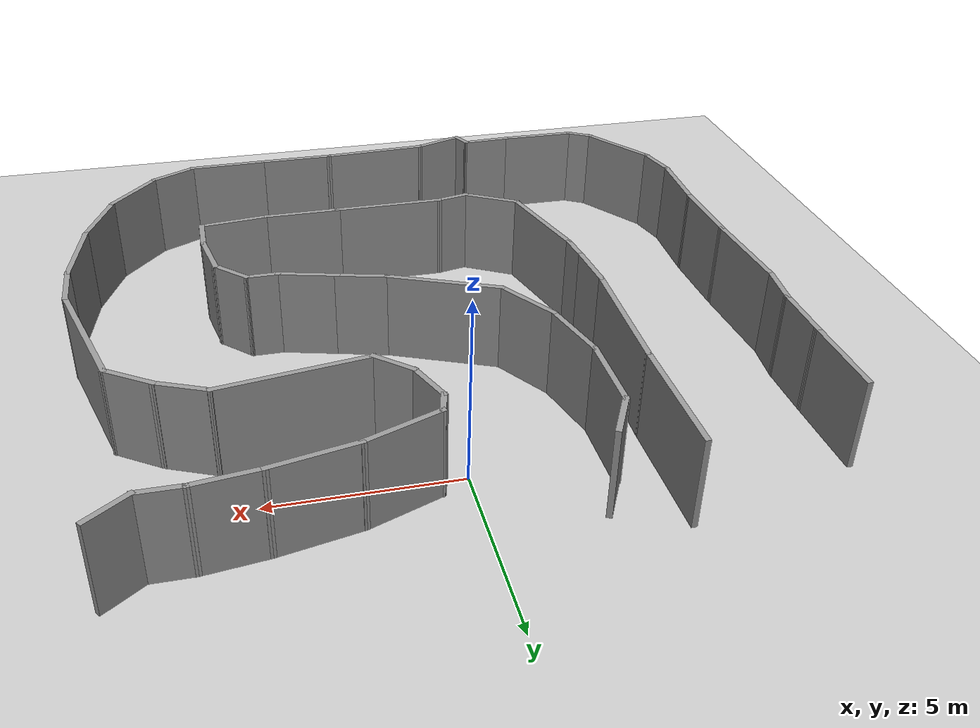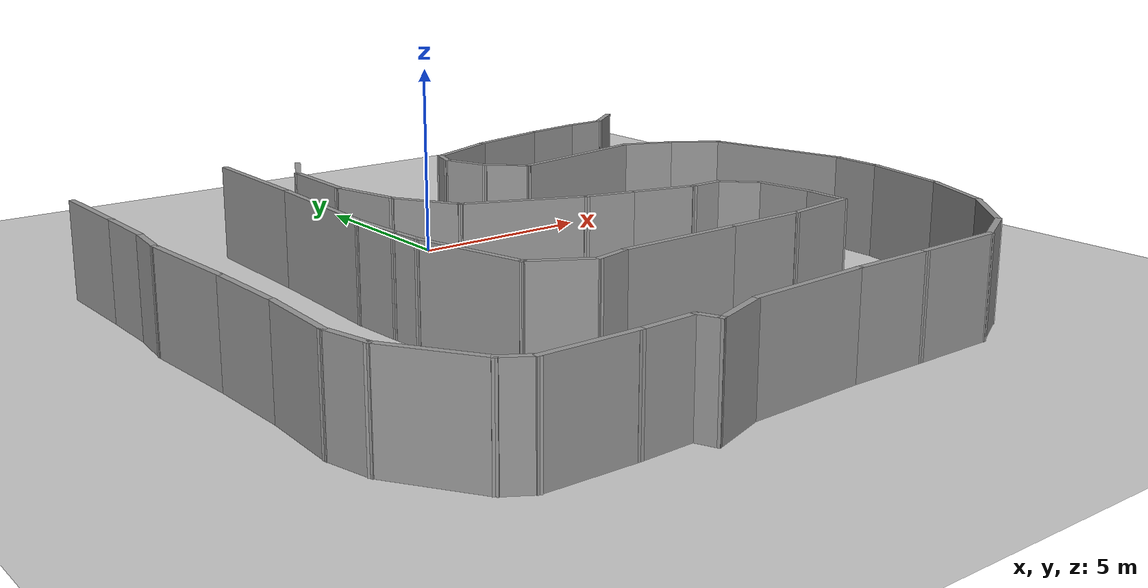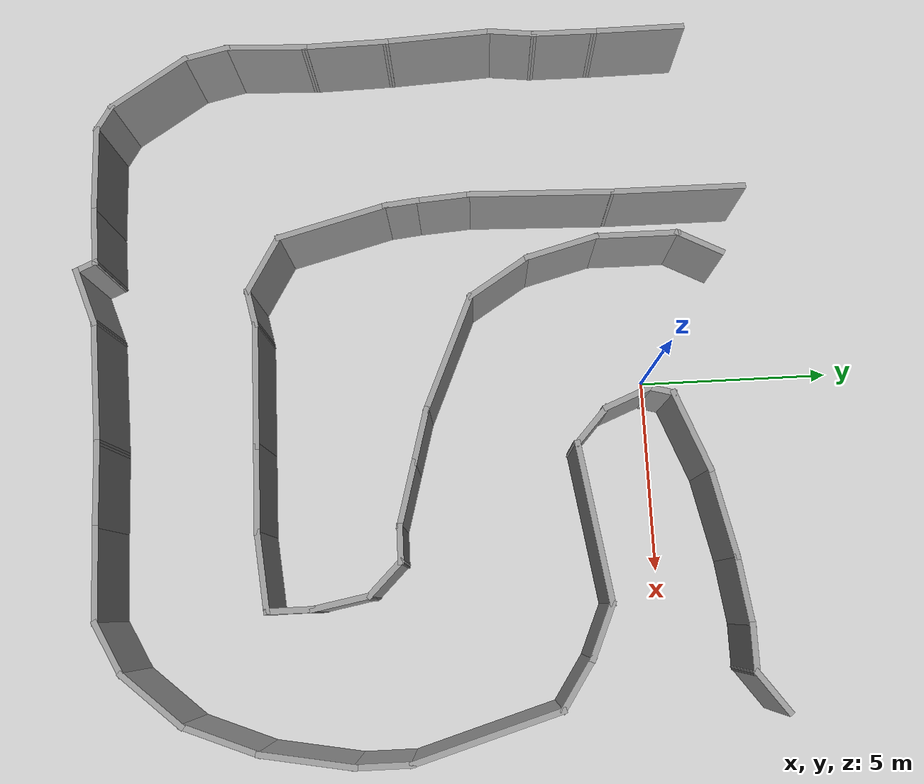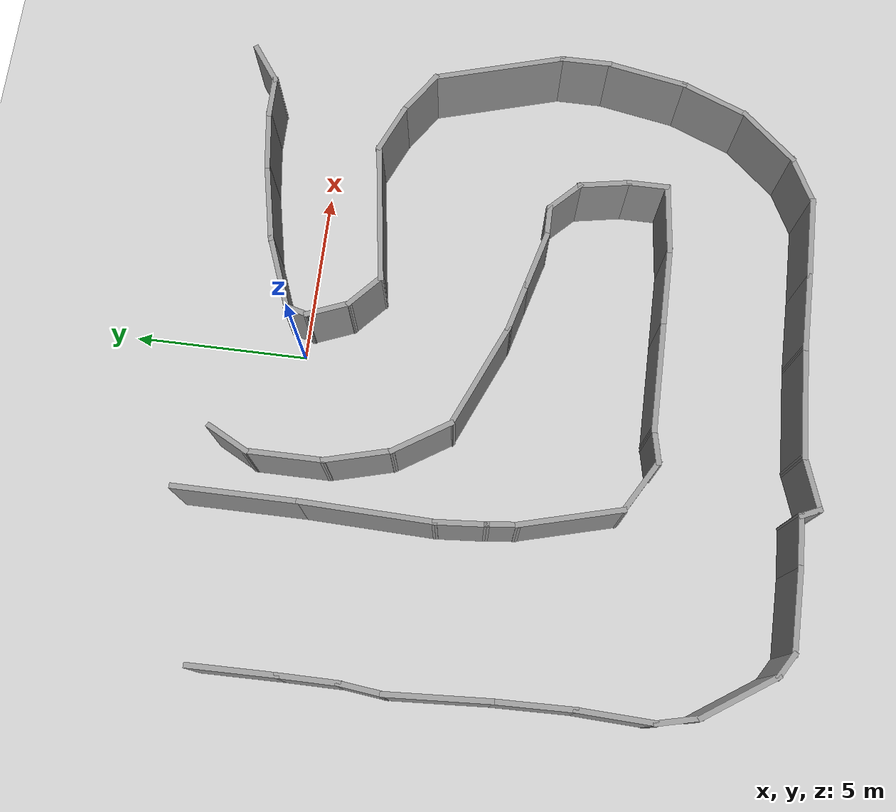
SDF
<sdf version="1.4">
 <world name="default">
  <model name="ground_plane">
   <static>1</static>
   <link name="link">
    <collision name="collision">
     <geometry><plane><normal>0 0 1</normal><size>100 100</size></plane></geometry>
     <surface><friction><ode><mu>100</mu><mu2>50</mu2></ode></friction></surface>
    </collision>
    <visual name="visual">
     <cast_shadows>0</cast_shadows>
     <geometry><plane><normal>0 0 1</normal><size>100 100</size></plane></geometry>
     <material>
      <script><uri>file://media/materials/scripts/gazebo.material</uri><name>Gazebo/Grey</name></script>
     </material>
    </visual>
    <velocity_decay><linear>0</linear><angular>0</angular></velocity_decay>
   </link>
  </model>
  <model name="BuildingDefaultName">
   <link name="Wall_0">
    <collision name="Wall_0_Collision">
     <geometry><box><size>1.75 0.15 2.5</size></box></geometry>
     <pose>0 0 1.25 0 -0 0</pose>
    </collision>
    <visual name="Wall_0_Visual">
     <pose>0 0 1.25 0 -0 0</pose>
     <geometry><box><size>1.75 0.15 2.5</size></box></geometry>
     <material>
      <script><uri>file://media/materials/scripts/gazebo.material</uri><name>Gazebo/Grey</name></script>
     </material>
    </visual>
    <velocity_decay><linear>0</linear><angular>0</angular></velocity_decay>
    <pose>-9.13259 -1.69954 0 0 0 -1.5708</pose>
   </link>
   <link name="Wall_1">
    <collision name="Wall_1_Collision">
     <geometry><box><size>1.32231 0.15 2.5</size></box></geometry>
     <pose>0 0 1.25 0 -0 0</pose>
    </collision>
    <visual name="Wall_1_Visual">
     <pose>0 0 1.25 0 -0 0</pose>
     <geometry><box><size>1.32231 0.15 2.5</size></box></geometry>
     <material>
      <script><uri>file://media/materials/scripts/gazebo.material</uri><name>Gazebo/Grey</name></script>
     </material>
    </visual>
    <velocity_decay><linear>0</linear><angular>0</angular></velocity_decay>
    <pose>-9.19833 -3.082 0 0 0 -1.68319</pose>
   </link>
   <link name="Wall_2">
    <collision name="Wall_2_Collision">
     <geometry><box><size>0.673963 0.15 2.5</size></box></geometry>
     <pose>0 0 1.25 0 -0 0</pose>
    </collision>
    <visual name="Wall_2_Visual">
     <pose>0 0 1.25 0 -0 0</pose>
     <geometry><box><size>0.673963 0.15 2.5</size></box></geometry>
     <material>
      <script><uri>file://media/materials/scripts/gazebo.material</uri><name>Gazebo/Grey</name></script>
     </material>
    </visual>
    <velocity_decay><linear>0</linear><angular>0</angular></velocity_decay>
    <pose>-3.24793 -14.2675 0 0 0 -1.15257</pose>
   </link>
   <link name="Wall_3">
    <collision name="Wall_3_Collision">
     <geometry><box><size>2.06108 0.15 2.5</size></box></geometry>
     <pose>0 0 1.25 0 -0 0</pose>
    </collision>
    <visual name="Wall_3_Visual">
     <pose>0 0 1.25 0 -0 0</pose>
     <geometry><box><size>2.06108 0.15 2.5</size></box></geometry>
     <material>
      <script><uri>file://media/materials/scripts/gazebo.material</uri><name>Gazebo/Grey</name></script>
     </material>
    </visual>
    <velocity_decay><linear>0</linear><angular>0</angular></velocity_decay>
    <pose>4.6394 -9.86659 0 0 0 -3.0322</pose>
   </link>
   <link name="Wall_4">
    <collision name="Wall_4_Collision">
     <geometry><box><size>2.25 0.15 2.5</size></box></geometry>
     <pose>0 0 1.25 0 -0 0</pose>
    </collision>
    <visual name="Wall_4_Visual">
     <pose>0 0 1.25 0 -0 0</pose>
     <geometry><box><size>2.25 0.15 2.5</size></box></geometry>
     <material>
      <script><uri>file://media/materials/scripts/gazebo.material</uri><name>Gazebo/Grey</name></script>
     </material>
    </visual>
    <velocity_decay><linear>0</linear><angular>0</angular></velocity_decay>
    <pose>2.63957 -9.97091 0 0 -0 3.14159</pose>
   </link>
   <link name="Wall_5">
    <collision name="Wall_5_Collision">
     <geometry><box><size>3.25 0.15 2.5</size></box></geometry>
     <pose>0 0 1.25 0 -0 0</pose>
    </collision>
    <visual name="Wall_5_Visual">
     <pose>0 0 1.25 0 -0 0</pose>
     <geometry><box><size>3.25 0.15 2.5</size></box></geometry>
     <material>
      <script><uri>file://media/materials/scripts/gazebo.material</uri><name>Gazebo/Grey</name></script>
     </material>
    </visual>
    <velocity_decay><linear>0</linear><angular>0</angular></velocity_decay>
    <pose>0.039574 -9.97091 0 0 -0 3.14159</pose>
   </link>
   <link name="Wall_6">
    <collision name="Wall_6_Collision">
     <geometry><box><size>1.04919 0.15 2.5</size></box></geometry>
     <pose>0 0 1.25 0 -0 0</pose>
    </collision>
    <visual name="Wall_6_Visual">
     <pose>0 0 1.25 0 -0 0</pose>
     <geometry><box><size>1.04919 0.15 2.5</size></box></geometry>
     <material>
      <script><uri>file://media/materials/scripts/gazebo.material</uri><name>Gazebo/Grey</name></script>
     </material>
    </visual>
    <velocity_decay><linear>0</linear><angular>0</angular></velocity_decay>
    <pose>-1.94987 -10.0659 0 0 0 -2.92873</pose>
   </link>
   <link name="Wall_7">
    <collision name="Wall_7_Collision">
     <geometry><box><size>1.75 0.15 2.5</size></box></geometry>
     <pose>0 0 1.25 0 -0 0</pose>
    </collision>
    <visual name="Wall_7_Visual">
     <pose>0 0 1.25 0 -0 0</pose>
     <geometry><box><size>1.75 0.15 2.5</size></box></geometry>
     <material>
      <script><uri>file://media/materials/scripts/gazebo.material</uri><name>Gazebo/Grey</name></script>
     </material>
    </visual>
    <velocity_decay><linear>0</linear><angular>0</angular></velocity_decay>
    <pose>-3.08214 -9.76088 0 0 -0 2.61799</pose>
   </link>
   <link name="Wall_8">
    <collision name="Wall_8_Collision">
     <geometry><box><size>3 0.15 2.5</size></box></geometry>
     <pose>0 0 1.25 0 -0 0</pose>
    </collision>
    <visual name="Wall_8_Visual">
     <pose>0 0 1.25 0 -0 0</pose>
     <geometry><box><size>3 0.15 2.5</size></box></geometry>
     <material>
      <script><uri>file://media/materials/scripts/gazebo.material</uri><name>Gazebo/Grey</name></script>
     </material>
    </visual>
    <velocity_decay><linear>0</linear><angular>0</angular></velocity_decay>
    <pose>-4.14377 -7.98443 0 0 -0 1.8326</pose>
   </link>
   <link name="Wall_9">
    <collision name="Wall_9_Collision">
     <geometry><box><size>0.971593 0.15 2.5</size></box></geometry>
     <pose>0 0 1.25 0 -0 0</pose>
    </collision>
    <visual name="Wall_9_Visual">
     <pose>0 0 1.25 0 -0 0</pose>
     <geometry><box><size>0.971593 0.15 2.5</size></box></geometry>
     <material>
      <script><uri>file://media/materials/scripts/gazebo.material</uri><name>Gazebo/Grey</name></script>
     </material>
    </visual>
    <velocity_decay><linear>0</linear><angular>0</angular></velocity_decay>
    <pose>-4.55908 -6.19983 0 0 -0 1.68422</pose>
   </link>
   <link name="Wall_10">
    <collision name="Wall_10_Collision">
     <geometry><box><size>1.52602 0.15 2.5</size></box></geometry>
     <pose>0 0 1.25 0 -0 0</pose>
    </collision>
    <visual name="Wall_10_Visual">
     <pose>0 0 1.25 0 -0 0</pose>
     <geometry><box><size>1.52602 0.15 2.5</size></box></geometry>
     <material>
      <script><uri>file://media/materials/scripts/gazebo.material</uri><name>Gazebo/Grey</name></script>
     </material>
    </visual>
    <velocity_decay><linear>0</linear><angular>0</angular></velocity_decay>
    <pose>-4.65835 -5.10569 0 0 -0 1.64757</pose>
   </link>
   <link name="Wall_11">
    <collision name="Wall_11_Collision">
     <geometry><box><size>3.80308 0.15 2.5</size></box></geometry>
     <pose>0 0 1.25 0 -0 0</pose>
    </collision>
    <visual name="Wall_11_Visual">
     <pose>0 0 1.25 0 -0 0</pose>
     <geometry><box><size>3.80308 0.15 2.5</size></box></geometry>
     <material>
      <script><uri>file://media/materials/scripts/gazebo.material</uri><name>Gazebo/Grey</name></script>
     </material>
    </visual>
    <velocity_decay><linear>0</linear><angular>0</angular></velocity_decay>
    <pose>-4.65835 -2.59393 0 0 -0 1.5419</pose>
   </link>
   <link name="Wall_12">
    <collision name="Wall_12_Collision">
     <geometry><box><size>1.61374 0.15 2.5</size></box></geometry>
     <pose>0 0 1.25 0 -0 0</pose>
    </collision>
    <visual name="Wall_12_Visual">
     <pose>0 0 1.25 0 -0 0</pose>
     <geometry><box><size>1.61374 0.15 2.5</size></box></geometry>
     <material>
      <script><uri>file://media/materials/scripts/gazebo.material</uri><name>Gazebo/Grey</name></script>
     </material>
    </visual>
    <velocity_decay><linear>0</linear><angular>0</angular></velocity_decay>
    <pose>-2.44992 -14.2675 0 0 -0 0.333244</pose>
   </link>
   <link name="Wall_13">
    <collision name="Wall_13_Collision">
     <geometry><box><size>3.21191 0.15 2.5</size></box></geometry>
     <pose>0 0 1.25 0 -0 0</pose>
    </collision>
    <visual name="Wall_13_Visual">
     <pose>0 0 1.25 0 -0 0</pose>
     <geometry><box><size>3.21191 0.15 2.5</size></box></geometry>
     <material>
      <script><uri>file://media/materials/scripts/gazebo.material</uri><name>Gazebo/Grey</name></script>
     </material>
    </visual>
    <velocity_decay><linear>0</linear><angular>0</angular></velocity_decay>
    <pose>-0.228806 -13.9616 0 0 -0 0.043451</pose>
   </link>
   <link name="Wall_14">
    <collision name="Wall_14_Collision">
     <geometry><box><size>2.25158 0.15 2.5</size></box></geometry>
     <pose>0 0 1.25 0 -0 0</pose>
    </collision>
    <visual name="Wall_14_Visual">
     <pose>0 0 1.25 0 -0 0</pose>
     <geometry><box><size>2.25158 0.15 2.5</size></box></geometry>
     <material>
      <script><uri>file://media/materials/scripts/gazebo.material</uri><name>Gazebo/Grey</name></script>
     </material>
    </visual>
    <velocity_decay><linear>0</linear><angular>0</angular></velocity_decay>
    <pose>2.35141 -13.8951 0 0 -0 0</pose>
   </link>
   <link name="Wall_15">
    <collision name="Wall_15_Collision">
     <geometry><box><size>2.41117 0.15 2.5</size></box></geometry>
     <pose>0 0 1.25 0 -0 0</pose>
    </collision>
    <visual name="Wall_15_Visual">
     <pose>0 0 1.25 0 -0 0</pose>
     <geometry><box><size>2.41117 0.15 2.5</size></box></geometry>
     <material>
      <script><uri>file://media/materials/scripts/gazebo.material</uri><name>Gazebo/Grey</name></script>
     </material>
    </visual>
    <velocity_decay><linear>0</linear><angular>0</angular></velocity_decay>
    <pose>4.53263 -13.8818 0 0 -0 0.011764</pose>
   </link>
   <link name="Wall_16">
    <collision name="Wall_16_Collision">
     <geometry><box><size>1.53014 0.15 2.5</size></box></geometry>
     <pose>0 0 1.25 0 -0 0</pose>
    </collision>
    <visual name="Wall_16_Visual">
     <pose>0 0 1.25 0 -0 0</pose>
     <geometry><box><size>1.53014 0.15 2.5</size></box></geometry>
     <material>
      <script><uri>file://media/materials/scripts/gazebo.material</uri><name>Gazebo/Grey</name></script>
     </material>
    </visual>
    <velocity_decay><linear>0</linear><angular>0</angular></velocity_decay>
    <pose>6.27494 -13.5493 0 0 -0 0.480887</pose>
   </link>
   <link name="Wall_17">
    <collision name="Wall_17_Collision">
     <geometry><box><size>2.05428 0.15 2.5</size></box></geometry>
     <pose>0 0 1.25 0 -0 0</pose>
    </collision>
    <visual name="Wall_17_Visual">
     <pose>0 0 1.25 0 -0 0</pose>
     <geometry><box><size>2.05428 0.15 2.5</size></box></geometry>
     <material>
      <script><uri>file://media/materials/scripts/gazebo.material</uri><name>Gazebo/Grey</name></script>
     </material>
    </visual>
    <velocity_decay><linear>0</linear><angular>0</angular></velocity_decay>
    <pose>7.51185 -12.5119 0 0 -0 0.854594</pose>
   </link>
   <link name="Wall_18">
    <collision name="Wall_18_Collision">
     <geometry><box><size>2.09618 0.15 2.5</size></box></geometry>
     <pose>0 0 1.25 0 -0 0</pose>
    </collision>
    <visual name="Wall_18_Visual">
     <pose>0 0 1.25 0 -0 0</pose>
     <geometry><box><size>2.09618 0.15 2.5</size></box></geometry>
     <material>
      <script><uri>file://media/materials/scripts/gazebo.material</uri><name>Gazebo/Grey</name></script>
     </material>
    </visual>
    <velocity_decay><linear>0</linear><angular>0</angular></velocity_decay>
    <pose>8.49606 -10.8893 0 0 -0 1.19283</pose>
   </link>
   <link name="Wall_19">
    <collision name="Wall_19_Collision">
     <geometry><box><size>2.41976 0.15 2.5</size></box></geometry>
     <pose>0 0 1.25 0 -0 0</pose>
    </collision>
    <visual name="Wall_19_Visual">
     <pose>0 0 1.25 0 -0 0</pose>
     <geometry><box><size>2.41976 0.15 2.5</size></box></geometry>
     <material>
      <script><uri>file://media/materials/scripts/gazebo.material</uri><name>Gazebo/Grey</name></script>
     </material>
    </visual>
    <velocity_decay><linear>0</linear><angular>0</angular></velocity_decay>
    <pose>9.05466 -8.86771 0 0 -0 1.39409</pose>
   </link>
   <link name="Wall_20">
    <collision name="Wall_20_Collision">
     <geometry><box><size>1.5 0.15 2.5</size></box></geometry>
     <pose>0 0 1.25 0 -0 0</pose>
    </collision>
    <visual name="Wall_20_Visual">
     <pose>0 0 1.25 0 -0 0</pose>
     <geometry><box><size>1.5 0.15 2.5</size></box></geometry>
     <material>
      <script><uri>file://media/materials/scripts/gazebo.material</uri><name>Gazebo/Grey</name></script>
     </material>
    </visual>
    <velocity_decay><linear>0</linear><angular>0</angular></velocity_decay>
    <pose>9.25417 -7.0755 0 0 -0 1.5708</pose>
   </link>
   <link name="Wall_21">
    <collision name="Wall_21_Collision">
     <geometry><box><size>2.93747 0.15 2.5</size></box></geometry>
     <pose>0 0 1.25 0 -0 0</pose>
    </collision>
    <visual name="Wall_21_Visual">
     <pose>0 0 1.25 0 -0 0</pose>
     <geometry><box><size>2.93747 0.15 2.5</size></box></geometry>
     <material>
      <script><uri>file://media/materials/scripts/gazebo.material</uri><name>Gazebo/Grey</name></script>
     </material>
    </visual>
    <velocity_decay><linear>0</linear><angular>0</angular></velocity_decay>
    <pose>-9.18202 -5.05577 0 0 0 -1.51189</pose>
   </link>
   <link name="Wall_22">
    <collision name="Wall_22_Collision">
     <geometry><box><size>3.89422 0.15 2.5</size></box></geometry>
     <pose>0 0 1.25 0 -0 0</pose>
    </collision>
    <visual name="Wall_22_Visual">
     <pose>0 0 1.25 0 -0 0</pose>
     <geometry><box><size>3.89422 0.15 2.5</size></box></geometry>
     <material>
      <script><uri>file://media/materials/scripts/gazebo.material</uri><name>Gazebo/Grey</name></script>
     </material>
    </visual>
    <velocity_decay><linear>0</linear><angular>0</angular></velocity_decay>
    <pose>8.73546 -4.60168 0 0 -0 1.85154</pose>
   </link>
   <link name="Wall_23">
    <collision name="Wall_23_Collision">
     <geometry><box><size>1.52963 0.15 2.5</size></box></geometry>
     <pose>0 0 1.25 0 -0 0</pose>
    </collision>
    <visual name="Wall_23_Visual">
     <pose>0 0 1.25 0 -0 0</pose>
     <geometry><box><size>1.52963 0.15 2.5</size></box></geometry>
     <material>
      <script><uri>file://media/materials/scripts/gazebo.material</uri><name>Gazebo/Grey</name></script>
     </material>
    </visual>
    <velocity_decay><linear>0</linear><angular>0</angular></velocity_decay>
    <pose>7.64485 -2.41716 0 0 -0 2.54824</pose>
   </link>
   <link name="Wall_24">
    <collision name="Wall_24_Collision">
     <geometry><box><size>1.54366 0.15 2.5</size></box></geometry>
     <pose>0 0 1.25 0 -0 0</pose>
    </collision>
    <visual name="Wall_24_Visual">
     <pose>0 0 1.25 0 -0 0</pose>
     <geometry><box><size>1.54366 0.15 2.5</size></box></geometry>
     <material>
      <script><uri>file://media/materials/scripts/gazebo.material</uri><name>Gazebo/Grey</name></script>
     </material>
    </visual>
    <velocity_decay><linear>0</linear><angular>0</angular></velocity_decay>
    <pose>6.43454 -1.75215 0 0 -0 2.72918</pose>
   </link>
   <link name="Wall_25">
    <collision name="Wall_25_Collision">
     <geometry><box><size>4.10378 0.15 2.5</size></box></geometry>
     <pose>0 0 1.25 0 -0 0</pose>
    </collision>
    <visual name="Wall_25_Visual">
     <pose>0 0 1.25 0 -0 0</pose>
     <geometry><box><size>4.10378 0.15 2.5</size></box></geometry>
     <material>
      <script><uri>file://media/materials/scripts/gazebo.material</uri><name>Gazebo/Grey</name></script>
     </material>
    </visual>
    <velocity_decay><linear>0</linear><angular>0</angular></velocity_decay>
    <pose>3.84102 -1.76545 0 0 0 -2.99303</pose>
   </link>
   <link name="Wall_26">
    <collision name="Wall_26_Collision">
     <geometry><box><size>1.29875 0.15 2.5</size></box></geometry>
     <pose>0 0 1.25 0 -0 0</pose>
    </collision>
    <visual name="Wall_26_Visual">
     <pose>0 0 1.25 0 -0 0</pose>
     <geometry><box><size>1.29875 0.15 2.5</size></box></geometry>
     <material>
      <script><uri>file://media/materials/scripts/gazebo.material</uri><name>Gazebo/Grey</name></script>
     </material>
    </visual>
    <velocity_decay><linear>0</linear><angular>0</angular></velocity_decay>
    <pose>1.46031 -1.67235 0 0 -0 2.40534</pose>
   </link>
   <link name="Wall_27">
    <collision name="Wall_27_Collision">
     <geometry><box><size>1.35526 0.15 2.5</size></box></geometry>
     <pose>0 0 1.25 0 -0 0</pose>
    </collision>
    <visual name="Wall_27_Visual">
     <pose>0 0 1.25 0 -0 0</pose>
     <geometry><box><size>1.35526 0.15 2.5</size></box></geometry>
     <material>
      <script><uri>file://media/materials/scripts/gazebo.material</uri><name>Gazebo/Grey</name></script>
     </material>
    </visual>
    <velocity_decay><linear>0</linear><angular>0</angular></velocity_decay>
    <pose>0.808602 -0.728047 0 0 -0 1.9554</pose>
   </link>
   <link name="Wall_28">
    <collision name="Wall_28_Collision">
     <geometry><box><size>0.75 0.15 2.5</size></box></geometry>
     <pose>0 0 1.25 0 -0 0</pose>
    </collision>
    <visual name="Wall_28_Visual">
     <pose>0 0 1.25 0 -0 0</pose>
     <geometry><box><size>0.75 0.15 2.5</size></box></geometry>
     <material>
      <script><uri>file://media/materials/scripts/gazebo.material</uri><name>Gazebo/Grey</name></script>
     </material>
    </visual>
    <velocity_decay><linear>0</linear><angular>0</angular></velocity_decay>
    <pose>0.660146 0.120334 0 0 -0 1.309</pose>
   </link>
   <link name="Wall_29">
    <collision name="Wall_29_Collision">
     <geometry><box><size>2.23581 0.15 2.5</size></box></geometry>
     <pose>0 0 1.25 0 -0 0</pose>
    </collision>
    <visual name="Wall_29_Visual">
     <pose>0 0 1.25 0 -0 0</pose>
     <geometry><box><size>2.23581 0.15 2.5</size></box></geometry>
     <material>
      <script><uri>file://media/materials/scripts/gazebo.material</uri><name>Gazebo/Grey</name></script>
     </material>
    </visual>
    <velocity_decay><linear>0</linear><angular>0</angular></velocity_decay>
    <pose>1.71085 0.785339 0 0 -0 0.368044</pose>
   </link>
   <link name="Wall_30">
    <collision name="Wall_30_Collision">
     <geometry><box><size>2.35156 0.15 2.5</size></box></geometry>
     <pose>0 0 1.25 0 -0 0</pose>
    </collision>
    <visual name="Wall_30_Visual">
     <pose>0 0 1.25 0 -0 0</pose>
     <geometry><box><size>2.35156 0.15 2.5</size></box></geometry>
     <material>
      <script><uri>file://media/materials/scripts/gazebo.material</uri><name>Gazebo/Grey</name></script>
     </material>
    </visual>
    <velocity_decay><linear>0</linear><angular>0</angular></velocity_decay>
    <pose>3.76122 1.38667 0 0 -0 0.206874</pose>
   </link>
   <link name="Wall_31">
    <collision name="Wall_31_Collision">
     <geometry><box><size>1.78651 0.15 2.5</size></box></geometry>
     <pose>0 0 1.25 0 -0 0</pose>
    </collision>
    <visual name="Wall_31_Visual">
     <pose>0 0 1.25 0 -0 0</pose>
     <geometry><box><size>1.78651 0.15 2.5</size></box></geometry>
     <material>
      <script><uri>file://media/materials/scripts/gazebo.material</uri><name>Gazebo/Grey</name></script>
     </material>
    </visual>
    <velocity_decay><linear>0</linear><angular>0</angular></velocity_decay>
    <pose>5.64984 1.71917 0 0 -0 0.130403</pose>
   </link>
   <link name="Wall_32">
    <collision name="Wall_32_Collision">
     <geometry><box><size>2.30527 0.15 2.5</size></box></geometry>
     <pose>0 0 1.25 0 -0 0</pose>
    </collision>
    <visual name="Wall_32_Visual">
     <pose>0 0 1.25 0 -0 0</pose>
     <geometry><box><size>2.30527 0.15 2.5</size></box></geometry>
     <material>
      <script><uri>file://media/materials/scripts/gazebo.material</uri><name>Gazebo/Grey</name></script>
     </material>
    </visual>
    <velocity_decay><linear>0</linear><angular>0</angular></velocity_decay>
    <pose>-9.07337 -7.5244 0 0 0 -1.54611</pose>
   </link>
   <link name="Wall_33">
    <collision name="Wall_33_Collision">
     <geometry><box><size>1.25 0.15 2.5</size></box></geometry>
     <pose>0 0 1.25 0 -0 0</pose>
    </collision>
    <visual name="Wall_33_Visual">
     <pose>0 0 1.25 0 -0 0</pose>
     <geometry><box><size>1.25 0.15 2.5</size></box></geometry>
     <material>
      <script><uri>file://media/materials/scripts/gazebo.material</uri><name>Gazebo/Grey</name></script>
     </material>
    </visual>
    <velocity_decay><linear>0</linear><angular>0</angular></velocity_decay>
    <pose>7.01114 1.82557 0 0 -0 0</pose>
   </link>
   <link name="Wall_34">
    <collision name="Wall_34_Collision">
     <geometry><box><size>1.32364 0.15 2.5</size></box></geometry>
     <pose>0 0 1.25 0 -0 0</pose>
    </collision>
    <visual name="Wall_34_Visual">
     <pose>0 0 1.25 0 -0 0</pose>
     <geometry><box><size>1.32364 0.15 2.5</size></box></geometry>
     <material>
      <script><uri>file://media/materials/scripts/gazebo.material</uri><name>Gazebo/Grey</name></script>
     </material>
    </visual>
    <velocity_decay><linear>0</linear><angular>0</angular></velocity_decay>
    <pose>8.03525 2.17137 0 0 -0 0.63017</pose>
   </link>
   <link name="Wall_43">
    <collision name="Wall_43_Collision">
     <geometry><box><size>2.19977 0.15 2.5</size></box></geometry>
     <pose>0 0 1.25 0 -0 0</pose>
    </collision>
    <visual name="Wall_43_Visual">
     <pose>0 0 1.25 0 -0 0</pose>
     <geometry><box><size>2.19977 0.15 2.5</size></box></geometry>
     <material>
      <script><uri>file://media/materials/scripts/gazebo.material</uri><name>Gazebo/Grey</name></script>
     </material>
    </visual>
    <velocity_decay><linear>0</linear><angular>0</angular></velocity_decay>
    <pose>-9.08667 -9.62581 0 0 0 -1.60974</pose>
   </link>
   <link name="Wall_54">
    <collision name="Wall_54_Collision">
     <geometry><box><size>1.29844 0.15 2.5</size></box></geometry>
     <pose>0 0 1.25 0 -0 0</pose>
    </collision>
    <visual name="Wall_54_Visual">
     <pose>0 0 1.25 0 -0 0</pose>
     <geometry><box><size>1.29844 0.15 2.5</size></box></geometry>
     <material>
      <script><uri>file://media/materials/scripts/gazebo.material</uri><name>Gazebo/Grey</name></script>
     </material>
    </visual>
    <velocity_decay><linear>0</linear><angular>0</angular></velocity_decay>
    <pose>-8.99357 -11.2085 0 0 0 -1.33705</pose>
   </link>
   <link name="Wall_63">
    <collision name="Wall_63_Collision">
     <geometry><box><size>2.48611 0.15 2.5</size></box></geometry>
     <pose>0 0 1.25 0 -0 0</pose>
    </collision>
    <visual name="Wall_63_Visual">
     <pose>0 0 1.25 0 -0 0</pose>
     <geometry><box><size>2.48611 0.15 2.5</size></box></geometry>
     <material>
      <script><uri>file://media/materials/scripts/gazebo.material</uri><name>Gazebo/Grey</name></script>
     </material>
    </visual>
    <velocity_decay><linear>0</linear><angular>0</angular></velocity_decay>
    <pose>-9.14867 0.268403 0 0 0 -1.55703</pose>
   </link>
   <link name="Wall_64">
    <collision name="Wall_64_Collision">
     <geometry><box><size>2.4518 0.15 2.5</size></box></geometry>
     <pose>0 0 1.25 0 -0 0</pose>
    </collision>
    <visual name="Wall_64_Visual">
     <pose>0 0 1.25 0 -0 0</pose>
     <geometry><box><size>2.4518 0.15 2.5</size></box></geometry>
     <material>
      <script><uri>file://media/materials/scripts/gazebo.material</uri><name>Gazebo/Grey</name></script>
     </material>
    </visual>
    <velocity_decay><linear>0</linear><angular>0</angular></velocity_decay>
    <pose>-8.22217 -12.7247 0 0 0 -0.982794</pose>
   </link>
   <link name="Wall_65">
    <collision name="Wall_65_Collision">
     <geometry><box><size>3.5 0.15 2.5</size></box></geometry>
     <pose>0 0 1.25 0 -0 0</pose>
    </collision>
    <visual name="Wall_65_Visual">
     <pose>0 0 1.25 0 -0 0</pose>
     <geometry><box><size>3.5 0.15 2.5</size></box></geometry>
     <material>
      <script><uri>file://media/materials/scripts/gazebo.material</uri><name>Gazebo/Grey</name></script>
     </material>
    </visual>
    <velocity_decay><linear>0</linear><angular>0</angular></velocity_decay>
    <pose>-4.60558 0.970175 0 0 -0 1.5708</pose>
   </link>
   <link name="Wall_75">
    <collision name="Wall_75_Collision">
     <geometry><box><size>0.866232 0.15 2.5</size></box></geometry>
     <pose>0 0 1.25 0 -0 0</pose>
    </collision>
    <visual name="Wall_75_Visual">
     <pose>0 0 1.25 0 -0 0</pose>
     <geometry><box><size>0.866232 0.15 2.5</size></box></geometry>
     <material>
      <script><uri>file://media/materials/scripts/gazebo.material</uri><name>Gazebo/Grey</name></script>
     </material>
    </visual>
    <velocity_decay><linear>0</linear><angular>0</angular></velocity_decay>
    <pose>-7.27786 -13.8685 0 0 0 -0.546789</pose>
   </link>
   <link name="Wall_86">
    <collision name="Wall_86_Collision">
     <geometry><box><size>2.38457 0.15 2.5</size></box></geometry>
     <pose>0 0 1.25 0 -0 0</pose>
    </collision>
    <visual name="Wall_86_Visual">
     <pose>0 0 1.25 0 -0 0</pose>
     <geometry><box><size>2.38457 0.15 2.5</size></box></geometry>
     <material>
      <script><uri>file://media/materials/scripts/gazebo.material</uri><name>Gazebo/Grey</name></script>
     </material>
    </visual>
    <velocity_decay><linear>0</linear><angular>0</angular></velocity_decay>
    <pose>-5.85475 -14.068 0 0 0 -0.011904</pose>
   </link>
   <link name="Wall_96">
    <collision name="Wall_96_Collision">
     <geometry><box><size>1.37184 0.15 2.5</size></box></geometry>
     <pose>0 0 1.25 0 -0 0</pose>
    </collision>
    <visual name="Wall_96_Visual">
     <pose>0 0 1.25 0 -0 0</pose>
     <geometry><box><size>1.37184 0.15 2.5</size></box></geometry>
     <material>
      <script><uri>file://media/materials/scripts/gazebo.material</uri><name>Gazebo/Grey</name></script>
     </material>
    </visual>
    <velocity_decay><linear>0</linear><angular>0</angular></velocity_decay>
    <pose>-3.14009 1.39828 0 0 0 -2.05333</pose>
   </link>
   <link name="Wall_97">
    <collision name="Wall_97_Collision">
     <geometry><box><size>1.53423 0.15 2.5</size></box></geometry>
     <pose>0 0 1.25 0 -0 0</pose>
    </collision>
    <visual name="Wall_97_Visual">
     <pose>0 0 1.25 0 -0 0</pose>
     <geometry><box><size>1.53423 0.15 2.5</size></box></geometry>
     <material>
      <script><uri>file://media/materials/scripts/gazebo.material</uri><name>Gazebo/Grey</name></script>
     </material>
    </visual>
    <velocity_decay><linear>0</linear><angular>0</angular></velocity_decay>
    <pose>-4.04594 -14.0547 0 0 -0 0.038443</pose>
   </link>
   <link name="Wall_98">
    <collision name="Wall_98_Collision">
     <geometry><box><size>2.25 0.15 2.5</size></box></geometry>
     <pose>0 0 1.25 0 -0 0</pose>
    </collision>
    <visual name="Wall_98_Visual">
     <pose>0 0 1.25 0 -0 0</pose>
     <geometry><box><size>2.25 0.15 2.5</size></box></geometry>
     <material>
      <script><uri>file://media/materials/scripts/gazebo.material</uri><name>Gazebo/Grey</name></script>
     </material>
    </visual>
    <velocity_decay><linear>0</linear><angular>0</angular></velocity_decay>
    <pose>-3.42357 -0.192888 0 0 0 -1.5708</pose>
   </link>
   <link name="Wall_99">
    <collision name="Wall_99_Collision">
     <geometry><box><size>2 0.15 2.5</size></box></geometry>
     <pose>0 0 1.25 0 -0 0</pose>
    </collision>
    <visual name="Wall_99_Visual">
     <pose>0 0 1.25 0 -0 0</pose>
     <geometry><box><size>2 0.15 2.5</size></box></geometry>
     <material>
      <script><uri>file://media/materials/scripts/gazebo.material</uri><name>Gazebo/Grey</name></script>
     </material>
    </visual>
    <velocity_decay><linear>0</linear><angular>0</angular></velocity_decay>
    <pose>-3.18416 -2.13637 0 0 0 -1.309</pose>
   </link>
   <link name="Wall_100">
    <collision name="Wall_100_Collision">
     <geometry><box><size>1.92512 0.15 2.5</size></box></geometry>
     <pose>0 0 1.25 0 -0 0</pose>
    </collision>
    <visual name="Wall_100_Visual">
     <pose>0 0 1.25 0 -0 0</pose>
     <geometry><box><size>1.92512 0.15 2.5</size></box></geometry>
     <material>
      <script><uri>file://media/materials/scripts/gazebo.material</uri><name>Gazebo/Grey</name></script>
     </material>
    </visual>
    <velocity_decay><linear>0</linear><angular>0</angular></velocity_decay>
    <pose>-2.46652 -3.77754 0 0 0 -1.00175</pose>
   </link>
   <link name="Wall_101">
    <collision name="Wall_101_Collision">
     <geometry><box><size>3.25133 0.15 2.5</size></box></geometry>
     <pose>0 0 1.25 0 -0 0</pose>
    </collision>
    <visual name="Wall_101_Visual">
     <pose>0 0 1.25 0 -0 0</pose>
     <geometry><box><size>3.25133 0.15 2.5</size></box></geometry>
     <material>
      <script><uri>file://media/materials/scripts/gazebo.material</uri><name>Gazebo/Grey</name></script>
     </material>
    </visual>
    <velocity_decay><linear>0</linear><angular>0</angular></velocity_decay>
    <pose>-0.563538 -5.13735 0 0 0 -0.405785</pose>
   </link>
   <link name="Wall_102">
    <collision name="Wall_102_Collision">
     <geometry><box><size>1.5 0.15 2.5</size></box></geometry>
     <pose>0 0 1.25 0 -0 0</pose>
    </collision>
    <visual name="Wall_102_Visual">
     <pose>0 0 1.25 0 -0 0</pose>
     <geometry><box><size>1.5 0.15 2.5</size></box></geometry>
     <material>
      <script><uri>file://media/materials/scripts/gazebo.material</uri><name>Gazebo/Grey</name></script>
     </material>
    </visual>
    <velocity_decay><linear>0</linear><angular>0</angular></velocity_decay>
    <pose>1.5132 -5.92416 0 0 0 -0.261799</pose>
   </link>
   <link name="Wall_103">
    <collision name="Wall_103_Collision">
     <geometry><box><size>1.75 0.15 2.5</size></box></geometry>
     <pose>0 0 1.25 0 -0 0</pose>
    </collision>
    <visual name="Wall_103_Visual">
     <pose>0 0 1.25 0 -0 0</pose>
     <geometry><box><size>1.75 0.15 2.5</size></box></geometry>
     <material>
      <script><uri>file://media/materials/scripts/gazebo.material</uri><name>Gazebo/Grey</name></script>
     </material>
    </visual>
    <velocity_decay><linear>0</linear><angular>0</angular></velocity_decay>
    <pose>2.93794 -6.30592 0 0 0 -0.261799</pose>
   </link>
   <link name="Wall_104">
    <collision name="Wall_104_Collision">
     <geometry><box><size>1 0.15 2.5</size></box></geometry>
     <pose>0 0 1.25 0 -0 0</pose>
    </collision>
    <visual name="Wall_104_Visual">
     <pose>0 0 1.25 0 -0 0</pose>
     <geometry><box><size>1 0.15 2.5</size></box></geometry>
     <material>
      <script><uri>file://media/materials/scripts/gazebo.material</uri><name>Gazebo/Grey</name></script>
     </material>
    </visual>
    <velocity_decay><linear>0</linear><angular>0</angular></velocity_decay>
    <pose>4.13568 -6.51298 0 0 -0 0</pose>
   </link>
   <link name="Wall_105">
    <collision name="Wall_105_Collision">
     <geometry><box><size>1.25 0.15 2.5</size></box></geometry>
     <pose>0 0 1.25 0 -0 0</pose>
    </collision>
    <visual name="Wall_105_Visual">
     <pose>0 0 1.25 0 -0 0</pose>
     <geometry><box><size>1.25 0.15 2.5</size></box></geometry>
     <material>
      <script><uri>file://media/materials/scripts/gazebo.material</uri><name>Gazebo/Grey</name></script>
     </material>
    </visual>
    <velocity_decay><linear>0</linear><angular>0</angular></velocity_decay>
    <pose>4.94959 -6.90189 0 0 0 -0.785398</pose>
   </link>
   <link name="Wall_106">
    <collision name="Wall_106_Collision">
     <geometry><box><size>1.5442 0.15 2.5</size></box></geometry>
     <pose>0 0 1.25 0 -0 0</pose>
    </collision>
    <visual name="Wall_106_Visual">
     <pose>0 0 1.25 0 -0 0</pose>
     <geometry><box><size>1.5442 0.15 2.5</size></box></geometry>
     <material>
      <script><uri>file://media/materials/scripts/gazebo.material</uri><name>Gazebo/Grey</name></script>
     </material>
    </visual>
    <velocity_decay><linear>0</linear><angular>0</angular></velocity_decay>
    <pose>5.46386 -7.97653 0 0 0 -1.38998</pose>
   </link>
   <link name="Wall_107">
    <collision name="Wall_107_Collision">
     <geometry><box><size>1.25 0.15 2.5</size></box></geometry>
     <pose>0 0 1.25 0 -0 0</pose>
    </collision>
    <visual name="Wall_107_Visual">
     <pose>0 0 1.25 0 -0 0</pose>
     <geometry><box><size>1.25 0.15 2.5</size></box></geometry>
     <material>
      <script><uri>file://media/materials/scripts/gazebo.material</uri><name>Gazebo/Grey</name></script>
     </material>
    </visual>
    <velocity_decay><linear>0</linear><angular>0</angular></velocity_decay>
    <pose>5.58923 -9.21226 0 0 0 -1.5708</pose>
   </link>
   <static>1</static>
  </model>
 </world>
</sdf>
